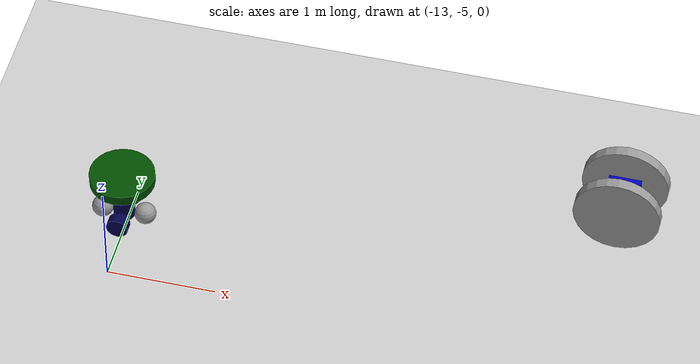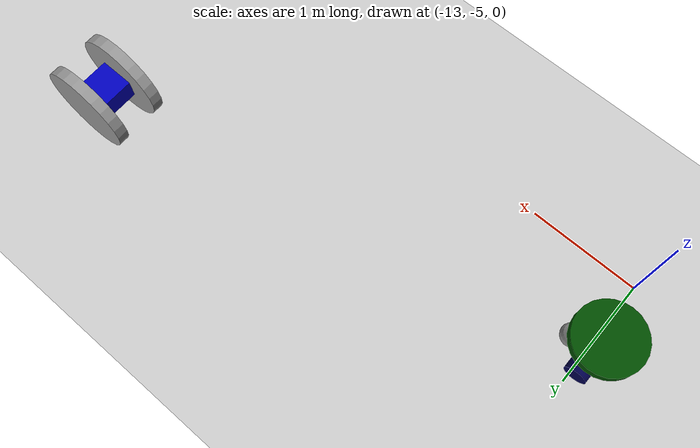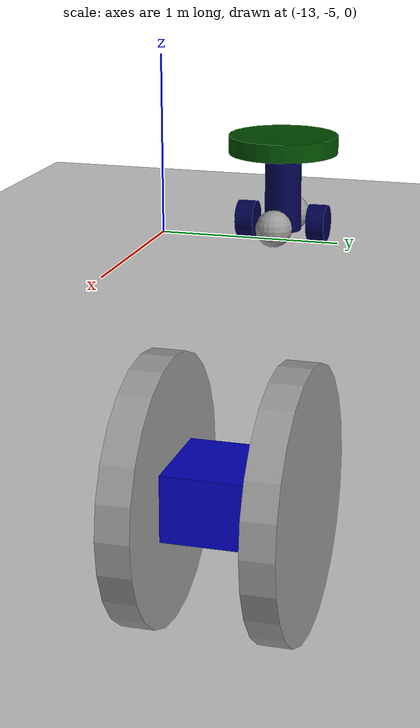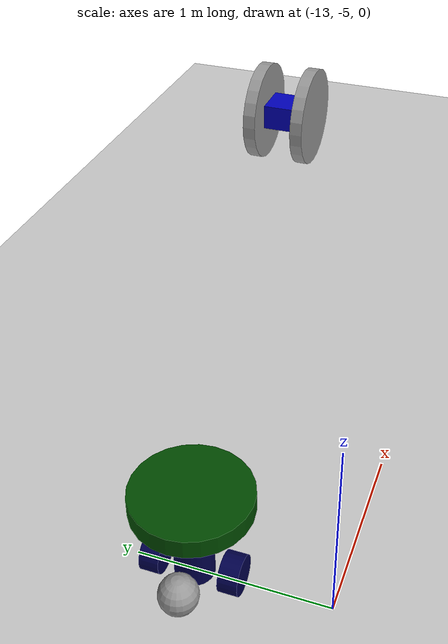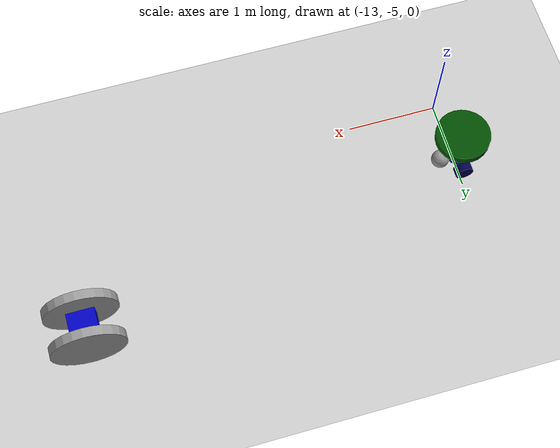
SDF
<sdf version="1.6">
 <world name="default">
  <model name="ground_plane">
   <static>1</static>
   <link name="link">
    <collision name="collision">
     <geometry><plane><normal>0 0 1</normal><size>100 100</size></plane></geometry>
     <surface>
      <contact><collide_bitmask>65535</collide_bitmask></contact>
      <friction><ode><mu>100</mu><mu2>50</mu2></ode></friction>
     </surface>
    </collision>
    <visual name="visual">
     <cast_shadows>0</cast_shadows>
     <geometry><plane><normal>0 0 1</normal><size>100 100</size></plane></geometry>
     <material>
      <script><uri>file://media/materials/scripts/gazebo.material</uri><name>Gazebo/Grey</name></script>
     </material>
    </visual>
   </link>
  </model>
  <model name="simplerobot">
   <link name="link_0">
    <inertial>
     <mass>1</mass>
     <inertia>
      <ixx>0.166667</ixx>
      <ixy>0</ixy>
      <ixz>0</ixz>
      <iyy>0.166667</iyy>
      <iyz>0</iyz>
      <izz>0.166667</izz>
     </inertia>
    </inertial>
    <visual name="visual">
     <geometry><box><size>0.3 0.3 0.2</size></box></geometry>
     <material>
      <lighting>1</lighting>
      <script><uri>file://media/materials/scripts/gazebo.material</uri><name>Gazebo/Grey</name></script>
      <shader type="pixel"><normal_map>__default__</normal_map></shader>
      <ambient>0 0 0.75 1</ambient>
      <diffuse>0 0 0.75 1</diffuse>
      <specular>0 0 0.75 1</specular>
      <emissive>0 0 0 1</emissive>
     </material>
    </visual>
    <collision name="collision">
     <geometry><box><size>0.3 0.3 0.2</size></box></geometry>
     <surface>
      <friction>
       <ode><mu>1</mu><mu2>1</mu2><fdir1>0 0 0</fdir1><slip1>0</slip1><slip2>0</slip2></ode>
       <torsional>
        <coefficient>1</coefficient>
        <patch_radius>0</patch_radius>
        <surface_radius>0</surface_radius>
        <use_patch_radius>1</use_patch_radius>
        <ode><slip>0</slip></ode>
       </torsional>
      </friction>
      <bounce><restitution_coefficient>0</restitution_coefficient><threshold>1e+06</threshold></bounce>
      <contact>
       <collide_without_contact>0</collide_without_contact>
       <collide_without_contact_bitmask>1</collide_without_contact_bitmask>
       <collide_bitmask>1</collide_bitmask>
       <ode>
        <soft_cfm>0</soft_cfm>
        <soft_erp>0.2</soft_erp>
        <kp>1e+13</kp>
        <kd>1</kd>
        <max_vel>0.01</max_vel>
        <min_depth>0</min_depth>
       </ode>
       <bullet>
        <split_impulse>1</split_impulse>
        <split_impulse_penetration_threshold>-0.01</split_impulse_penetration_threshold>
        <soft_cfm>0</soft_cfm>
        <soft_erp>0.2</soft_erp>
        <kp>1e+13</kp>
        <kd>1</kd>
       </bullet>
      </contact>
     </surface>
    </collision>
   </link>
   <link name="link_1">
    <pose>0 -0.200038 0 1.5707 -0 0</pose>
    <inertial>
     <mass>1</mass>
     <inertia><ixx>0.145833</ixx><ixy>0</ixy><ixz>0</ixz><iyy>0.145833</iyy><iyz>0</iyz><izz>0.125</izz></inertia>
    </inertial>
    <visual name="visual">
     <geometry><cylinder><radius>0.4</radius><length>0.1</length></cylinder></geometry>
     <material>
      <lighting>1</lighting>
      <script><uri>file://media/materials/scripts/gazebo.material</uri><name>Gazebo/Grey</name></script>
      <shader type="pixel"><normal_map>__default__</normal_map></shader>
      <ambient>0 0 0 1</ambient>
      <diffuse>0 0 0 1</diffuse>
      <specular>0 0 0 1</specular>
      <emissive>0 0 0 1</emissive>
     </material>
    </visual>
    <collision name="collision">
     <geometry><cylinder><radius>0.4</radius><length>0.1</length></cylinder></geometry>
     <surface>
      <friction>
       <ode><mu>1</mu><mu2>1</mu2><fdir1>0 0 0</fdir1><slip1>0</slip1><slip2>0</slip2></ode>
       <torsional>
        <coefficient>1</coefficient>
        <patch_radius>0</patch_radius>
        <surface_radius>0</surface_radius>
        <use_patch_radius>1</use_patch_radius>
        <ode><slip>0</slip></ode>
       </torsional>
      </friction>
      <bounce><restitution_coefficient>0</restitution_coefficient><threshold>1e+06</threshold></bounce>
      <contact>
       <collide_without_contact>0</collide_without_contact>
       <collide_without_contact_bitmask>1</collide_without_contact_bitmask>
       <collide_bitmask>1</collide_bitmask>
       <ode>
        <soft_cfm>0</soft_cfm>
        <soft_erp>0.2</soft_erp>
        <kp>1e+13</kp>
        <kd>1</kd>
        <max_vel>0.01</max_vel>
        <min_depth>0</min_depth>
       </ode>
       <bullet>
        <split_impulse>1</split_impulse>
        <split_impulse_penetration_threshold>-0.01</split_impulse_penetration_threshold>
        <soft_cfm>0</soft_cfm>
        <soft_erp>0.2</soft_erp>
        <kp>1e+13</kp>
        <kd>1</kd>
       </bullet>
      </contact>
     </surface>
    </collision>
   </link>
   <link name="link_1_clone">
    <pose>0 0.200039 0 1.5707 -0 0</pose>
    <inertial>
     <mass>1</mass>
     <inertia><ixx>0.145833</ixx><ixy>0</ixy><ixz>0</ixz><iyy>0.145833</iyy><iyz>0</iyz><izz>0.125</izz></inertia>
    </inertial>
    <visual name="visual">
     <geometry><cylinder><radius>0.4</radius><length>0.1</length></cylinder></geometry>
     <material>
      <lighting>1</lighting>
      <script><uri>file://media/materials/scripts/gazebo.material</uri><name>Gazebo/Grey</name></script>
      <shader type="pixel"><normal_map>__default__</normal_map></shader>
      <ambient>0 0 0 1</ambient>
      <diffuse>0 0 0 1</diffuse>
      <specular>0 0 0 1</specular>
      <emissive>0 0 0 1</emissive>
     </material>
    </visual>
    <collision name="collision">
     <geometry><cylinder><radius>0.4</radius><length>0.1</length></cylinder></geometry>
     <surface>
      <friction>
       <ode><mu>1</mu><mu2>1</mu2><fdir1>0 0 0</fdir1><slip1>0</slip1><slip2>0</slip2></ode>
       <torsional>
        <coefficient>1</coefficient>
        <patch_radius>0</patch_radius>
        <surface_radius>0</surface_radius>
        <use_patch_radius>1</use_patch_radius>
        <ode><slip>0</slip></ode>
       </torsional>
      </friction>
      <bounce><restitution_coefficient>0</restitution_coefficient><threshold>1e+06</threshold></bounce>
      <contact>
       <collide_without_contact>0</collide_without_contact>
       <collide_without_contact_bitmask>1</collide_without_contact_bitmask>
       <collide_bitmask>1</collide_bitmask>
       <ode>
        <soft_cfm>0</soft_cfm>
        <soft_erp>0.2</soft_erp>
        <kp>1e+13</kp>
        <kd>1</kd>
        <max_vel>0.01</max_vel>
        <min_depth>0</min_depth>
       </ode>
       <bullet>
        <split_impulse>1</split_impulse>
        <split_impulse_penetration_threshold>-0.01</split_impulse_penetration_threshold>
        <soft_cfm>0</soft_cfm>
        <soft_erp>0.2</soft_erp>
        <kp>1e+13</kp>
        <kd>1</kd>
       </bullet>
      </contact>
     </surface>
    </collision>
   </link>
   <joint name="link_0_JOINT_0" type="revolute">
    <parent>link_0</parent>
    <child>link_1</child>
    <axis>
     <xyz>0 0 1</xyz>
     <use_parent_model_frame>0</use_parent_model_frame>
     <limit>
      <lower>-1.79769e+308</lower>
      <upper>1.79769e+308</upper>
      <effort>-1</effort>
      <velocity>-1</velocity>
     </limit>
     <dynamics>
      <spring_reference>0</spring_reference>
      <spring_stiffness>0</spring_stiffness>
      <damping>0</damping>
     </dynamics>
    </axis>
    <physics>
     <ode><limit><cfm>0</cfm><erp>0.2</erp></limit><suspension><cfm>0</cfm><erp>0.2</erp></suspension></ode>
    </physics>
   </joint>
   <joint name="link_0_JOINT_1" type="revolute">
    <parent>link_0</parent>
    <child>link_1_clone</child>
    <axis>
     <xyz>0 0 1</xyz>
     <use_parent_model_frame>0</use_parent_model_frame>
     <limit>
      <lower>-1.79769e+308</lower>
      <upper>1.79769e+308</upper>
      <effort>-1</effort>
      <velocity>-1</velocity>
     </limit>
     <dynamics>
      <spring_reference>0</spring_reference>
      <spring_stiffness>0</spring_stiffness>
      <damping>0</damping>
     </dynamics>
    </axis>
    <physics>
     <ode><limit><cfm>0</cfm><erp>0.2</erp></limit><suspension><cfm>0</cfm><erp>0.2</erp></suspension></ode>
    </physics>
   </joint>
   <static>0</static>
   <pose>-8.63197 -3.36346 0.400005 -1e-06 0 0</pose>
  </model>
  <model name="simplerobot2">
   <link name="link_0">
    <pose>0 0 0.12 0 -0 0</pose>
    <inertial>
     <mass>1</mass>
     <inertia><ixx>0.145833</ixx><ixy>0</ixy><ixz>0</ixz><iyy>0.145833</iyy><iyz>0</iyz><izz>0.125</izz></inertia>
    </inertial>
    <visual name="visual">
     <geometry><cylinder><radius>0.1</radius><length>0.4</length></cylinder></geometry>
     <material>
      <lighting>1</lighting>
      <script><uri>file://media/materials/scripts/gazebo.material</uri><name>Gazebo/Grey</name></script>
      <shader type="pixel"><normal_map>__default__</normal_map></shader>
      <ambient>0 0 0.3 1</ambient>
      <diffuse>0 0 0.3 1</diffuse>
      <specular>0 0 0.3 1</specular>
      <emissive>0 0 0 1</emissive>
     </material>
    </visual>
    <collision name="collision">
     <geometry><cylinder><radius>0.1</radius><length>0.4</length></cylinder></geometry>
     <surface>
      <friction>
       <ode><mu>1</mu><mu2>1</mu2><fdir1>0 0 0</fdir1><slip1>0</slip1><slip2>0</slip2></ode>
       <torsional>
        <coefficient>1</coefficient>
        <patch_radius>0</patch_radius>
        <surface_radius>0</surface_radius>
        <use_patch_radius>1</use_patch_radius>
        <ode><slip>0</slip></ode>
       </torsional>
      </friction>
      <bounce><restitution_coefficient>0</restitution_coefficient><threshold>1e+06</threshold></bounce>
      <contact>
       <collide_without_contact>0</collide_without_contact>
       <collide_without_contact_bitmask>1</collide_without_contact_bitmask>
       <collide_bitmask>1</collide_bitmask>
       <ode>
        <soft_cfm>0</soft_cfm>
        <soft_erp>0.2</soft_erp>
        <kp>1e+13</kp>
        <kd>1</kd>
        <max_vel>0.01</max_vel>
        <min_depth>0</min_depth>
       </ode>
       <bullet>
        <split_impulse>1</split_impulse>
        <split_impulse_penetration_threshold>-0.01</split_impulse_penetration_threshold>
        <soft_cfm>0</soft_cfm>
        <soft_erp>0.2</soft_erp>
        <kp>1e+13</kp>
        <kd>1</kd>
       </bullet>
      </contact>
     </surface>
    </collision>
   </link>
   <link name="link_0_0">
    <pose>0 0 0.4 0 4e-06 0.000493</pose>
    <inertial>
     <mass>1</mass>
     <inertia><ixx>0.145833</ixx><ixy>0</ixy><ixz>0</ixz><iyy>0.145833</iyy><iyz>0</iyz><izz>0.125</izz></inertia>
    </inertial>
    <visual name="visual">
     <geometry><cylinder><radius>0.3</radius><length>0.1</length></cylinder></geometry>
     <material>
      <lighting>1</lighting>
      <script><uri>file://media/materials/scripts/gazebo.material</uri><name>Gazebo/Grey</name></script>
      <shader type="pixel"><normal_map>__default__</normal_map></shader>
      <ambient>0 0.3 0 1</ambient>
      <diffuse>0 0.3 0 1</diffuse>
      <specular>0 0.3 0 1</specular>
      <emissive>0 0 0 1</emissive>
     </material>
    </visual>
    <collision name="collision">
     <geometry><cylinder><radius>0.3</radius><length>0.1</length></cylinder></geometry>
     <surface>
      <friction>
       <ode><mu>1</mu><mu2>1</mu2><fdir1>0 0 0</fdir1><slip1>0</slip1><slip2>0</slip2></ode>
       <torsional>
        <coefficient>1</coefficient>
        <patch_radius>0</patch_radius>
        <surface_radius>0</surface_radius>
        <use_patch_radius>1</use_patch_radius>
        <ode><slip>0</slip></ode>
       </torsional>
      </friction>
      <bounce><restitution_coefficient>0</restitution_coefficient><threshold>1e+06</threshold></bounce>
      <contact>
       <collide_without_contact>0</collide_without_contact>
       <collide_without_contact_bitmask>1</collide_without_contact_bitmask>
       <collide_bitmask>1</collide_bitmask>
       <ode>
        <soft_cfm>0</soft_cfm>
        <soft_erp>0.2</soft_erp>
        <kp>1e+13</kp>
        <kd>1</kd>
        <max_vel>0.01</max_vel>
        <min_depth>0</min_depth>
       </ode>
       <bullet>
        <split_impulse>1</split_impulse>
        <split_impulse_penetration_threshold>-0.01</split_impulse_penetration_threshold>
        <soft_cfm>0</soft_cfm>
        <soft_erp>0.2</soft_erp>
        <kp>1e+13</kp>
        <kd>1</kd>
       </bullet>
      </contact>
     </surface>
    </collision>
   </link>
   <link name="link_1">
    <pose>0 -0.2 -0.03 1.5707 -0 0</pose>
    <inertial>
     <mass>1</mass>
     <inertia><ixx>0.145833</ixx><ixy>0</ixy><ixz>0</ixz><iyy>0.145833</iyy><iyz>0</iyz><izz>0.125</izz></inertia>
    </inertial>
    <visual name="visual">
     <geometry><cylinder><radius>0.1</radius><length>0.1</length></cylinder></geometry>
     <material>
      <lighting>1</lighting>
      <script><uri>file://media/materials/scripts/gazebo.material</uri><name>Gazebo/Grey</name></script>
      <shader type="pixel"><normal_map>__default__</normal_map></shader>
      <ambient>0 0 0.3 1</ambient>
      <diffuse>0 0 0 1</diffuse>
      <specular>0 0 0 1</specular>
      <emissive>0 0 0 1</emissive>
     </material>
    </visual>
    <collision name="collision">
     <geometry><cylinder><radius>0.1</radius><length>0.1</length></cylinder></geometry>
     <surface>
      <friction>
       <ode><mu>1</mu><mu2>1</mu2><fdir1>0 0 0</fdir1><slip1>0</slip1><slip2>0</slip2></ode>
       <torsional>
        <coefficient>1</coefficient>
        <patch_radius>0</patch_radius>
        <surface_radius>0</surface_radius>
        <use_patch_radius>1</use_patch_radius>
        <ode><slip>0</slip></ode>
       </torsional>
      </friction>
      <bounce><restitution_coefficient>0</restitution_coefficient><threshold>1e+06</threshold></bounce>
      <contact>
       <collide_without_contact>0</collide_without_contact>
       <collide_without_contact_bitmask>1</collide_without_contact_bitmask>
       <collide_bitmask>1</collide_bitmask>
       <ode>
        <soft_cfm>0</soft_cfm>
        <soft_erp>0.2</soft_erp>
        <kp>1e+13</kp>
        <kd>1</kd>
        <max_vel>0.01</max_vel>
        <min_depth>0</min_depth>
       </ode>
       <bullet>
        <split_impulse>1</split_impulse>
        <split_impulse_penetration_threshold>-0.01</split_impulse_penetration_threshold>
        <soft_cfm>0</soft_cfm>
        <soft_erp>0.2</soft_erp>
        <kp>1e+13</kp>
        <kd>1</kd>
       </bullet>
      </contact>
     </surface>
    </collision>
   </link>
   <link name="link_1_clone">
    <pose>0 0.2 -0.03 1.5707 -0 0</pose>
    <inertial>
     <mass>1</mass>
     <inertia><ixx>0.145833</ixx><ixy>0</ixy><ixz>0</ixz><iyy>0.145833</iyy><iyz>0</iyz><izz>0.125</izz></inertia>
    </inertial>
    <visual name="visual">
     <geometry><cylinder><radius>0.1</radius><length>0.1</length></cylinder></geometry>
     <material>
      <lighting>1</lighting>
      <script><uri>file://media/materials/scripts/gazebo.material</uri><name>Gazebo/Grey</name></script>
      <shader type="pixel"><normal_map>__default__</normal_map></shader>
      <ambient>0 0 0.3 1</ambient>
      <diffuse>0 0 0 1</diffuse>
      <specular>0 0 0 1</specular>
      <emissive>0 0 0 1</emissive>
     </material>
    </visual>
    <collision name="collision">
     <geometry><cylinder><radius>0.1</radius><length>0.1</length></cylinder></geometry>
     <surface>
      <friction>
       <ode><mu>1</mu><mu2>1</mu2><fdir1>0 0 0</fdir1><slip1>0</slip1><slip2>0</slip2></ode>
       <torsional>
        <coefficient>1</coefficient>
        <patch_radius>0</patch_radius>
        <surface_radius>0</surface_radius>
        <use_patch_radius>1</use_patch_radius>
        <ode><slip>0</slip></ode>
       </torsional>
      </friction>
      <bounce><restitution_coefficient>0</restitution_coefficient><threshold>1e+06</threshold></bounce>
      <contact>
       <collide_without_contact>0</collide_without_contact>
       <collide_without_contact_bitmask>1</collide_without_contact_bitmask>
       <collide_bitmask>1</collide_bitmask>
       <ode>
        <soft_cfm>0</soft_cfm>
        <soft_erp>0.2</soft_erp>
        <kp>1e+13</kp>
        <kd>1</kd>
        <max_vel>0.01</max_vel>
        <min_depth>0</min_depth>
       </ode>
       <bullet>
        <split_impulse>1</split_impulse>
        <split_impulse_penetration_threshold>-0.01</split_impulse_penetration_threshold>
        <soft_cfm>0</soft_cfm>
        <soft_erp>0.2</soft_erp>
        <kp>1e+13</kp>
        <kd>1</kd>
       </bullet>
      </contact>
     </surface>
    </collision>
   </link>
   <link name="link_2">
    <pose>0.2 0 -0.03 0 -0 0</pose>
    <inertial>
     <mass>1</mass>
     <inertia><ixx>0.1</ixx><ixy>0</ixy><ixz>0</ixz><iyy>0.1</iyy><iyz>0</iyz><izz>0.1</izz></inertia>
    </inertial>
    <visual name="visual">
     <geometry><sphere><radius>0.1</radius></sphere></geometry>
     <material>
      <lighting>1</lighting>
      <script><uri>file://media/materials/scripts/gazebo.material</uri><name>Gazebo/Grey</name></script>
      <shader type="pixel"><normal_map>__default__</normal_map></shader>
      <ambient>0.3 0.3 0.3 1</ambient>
      <diffuse>0.7 0.7 0.7 1</diffuse>
      <specular>0.01 0.01 0.01 1</specular>
      <emissive>0 0 0 1</emissive>
     </material>
    </visual>
    <collision name="collision">
     <geometry><sphere><radius>0.1</radius></sphere></geometry>
     <surface>
      <friction>
       <ode><mu>1</mu><mu2>1</mu2><fdir1>0 0 0</fdir1><slip1>0</slip1><slip2>0</slip2></ode>
       <torsional>
        <coefficient>1</coefficient>
        <patch_radius>0</patch_radius>
        <surface_radius>0</surface_radius>
        <use_patch_radius>1</use_patch_radius>
        <ode><slip>0</slip></ode>
       </torsional>
      </friction>
      <bounce><restitution_coefficient>0</restitution_coefficient><threshold>1e+06</threshold></bounce>
      <contact>
       <collide_without_contact>0</collide_without_contact>
       <collide_without_contact_bitmask>1</collide_without_contact_bitmask>
       <collide_bitmask>1</collide_bitmask>
       <ode>
        <soft_cfm>0</soft_cfm>
        <soft_erp>0.2</soft_erp>
        <kp>1e+13</kp>
        <kd>1</kd>
        <max_vel>0.01</max_vel>
        <min_depth>0</min_depth>
       </ode>
       <bullet>
        <split_impulse>1</split_impulse>
        <split_impulse_penetration_threshold>-0.01</split_impulse_penetration_threshold>
        <soft_cfm>0</soft_cfm>
        <soft_erp>0.2</soft_erp>
        <kp>1e+13</kp>
        <kd>1</kd>
       </bullet>
      </contact>
     </surface>
    </collision>
   </link>
   <link name="link_2_clone">
    <pose>-0.2 -0 -0.03 0 -0 0</pose>
    <inertial>
     <mass>1</mass>
     <inertia><ixx>0.1</ixx><ixy>0</ixy><ixz>0</ixz><iyy>0.1</iyy><iyz>0</iyz><izz>0.1</izz></inertia>
    </inertial>
    <visual name="visual">
     <geometry><sphere><radius>0.1</radius></sphere></geometry>
     <material>
      <lighting>1</lighting>
      <script><uri>file://media/materials/scripts/gazebo.material</uri><name>Gazebo/Grey</name></script>
      <shader type="pixel"><normal_map>__default__</normal_map></shader>
      <ambient>0.3 0.3 0.3 1</ambient>
      <diffuse>0.7 0.7 0.7 1</diffuse>
      <specular>0.01 0.01 0.01 1</specular>
      <emissive>0 0 0 1</emissive>
     </material>
    </visual>
    <collision name="collision">
     <geometry><sphere><radius>0.1</radius></sphere></geometry>
     <surface>
      <friction>
       <ode><mu>1</mu><mu2>1</mu2><fdir1>0 0 0</fdir1><slip1>0</slip1><slip2>0</slip2></ode>
       <torsional>
        <coefficient>1</coefficient>
        <patch_radius>0</patch_radius>
        <surface_radius>0</surface_radius>
        <use_patch_radius>1</use_patch_radius>
        <ode><slip>0</slip></ode>
       </torsional>
      </friction>
      <bounce><restitution_coefficient>0</restitution_coefficient><threshold>1e+06</threshold></bounce>
      <contact>
       <collide_without_contact>0</collide_without_contact>
       <collide_without_contact_bitmask>1</collide_without_contact_bitmask>
       <collide_bitmask>1</collide_bitmask>
       <ode>
        <soft_cfm>0</soft_cfm>
        <soft_erp>0.2</soft_erp>
        <kp>1e+13</kp>
        <kd>1</kd>
        <max_vel>0.01</max_vel>
        <min_depth>0</min_depth>
       </ode>
       <bullet>
        <split_impulse>1</split_impulse>
        <split_impulse_penetration_threshold>-0.01</split_impulse_penetration_threshold>
        <soft_cfm>0</soft_cfm>
        <soft_erp>0.2</soft_erp>
        <kp>1e+13</kp>
        <kd>1</kd>
       </bullet>
      </contact>
     </surface>
    </collision>
   </link>
   <joint name="link_0_0_JOINT_1" type="revolute">
    <parent>link_0_0</parent>
    <child>link_0</child>
    <axis>
     <xyz>0 0 1</xyz>
     <use_parent_model_frame>0</use_parent_model_frame>
     <limit>
      <lower>-1.79769e+308</lower>
      <upper>1.79769e+308</upper>
      <effort>-1</effort>
      <velocity>-1</velocity>
     </limit>
     <dynamics>
      <spring_reference>0</spring_reference>
      <spring_stiffness>0</spring_stiffness>
      <damping>0</damping>
     </dynamics>
    </axis>
    <physics>
     <ode><limit><cfm>0</cfm><erp>0.2</erp></limit><suspension><cfm>0</cfm><erp>0.2</erp></suspension></ode>
    </physics>
   </joint>
   <joint name="link_0_JOINT_0" type="revolute">
    <parent>link_0</parent>
    <child>link_1</child>
    <axis>
     <xyz>0 0 1</xyz>
     <use_parent_model_frame>0</use_parent_model_frame>
     <limit>
      <lower>-1.79769e+308</lower>
      <upper>1.79769e+308</upper>
      <effort>-1</effort>
      <velocity>-1</velocity>
     </limit>
     <dynamics>
      <spring_reference>0</spring_reference>
      <spring_stiffness>0</spring_stiffness>
      <damping>0</damping>
      <friction>0</friction>
     </dynamics>
    </axis>
    <physics>
     <ode><limit><cfm>0</cfm><erp>0.2</erp></limit><suspension><cfm>0</cfm><erp>0.2</erp></suspension></ode>
    </physics>
   </joint>
   <joint name="link_0_JOINT_3" type="revolute">
    <parent>link_0</parent>
    <child>link_1_clone</child>
    <axis>
     <xyz>0 0 1</xyz>
     <use_parent_model_frame>0</use_parent_model_frame>
     <limit>
      <lower>-1.79769e+308</lower>
      <upper>1.79769e+308</upper>
      <effort>-1</effort>
      <velocity>-1</velocity>
     </limit>
     <dynamics>
      <spring_reference>0</spring_reference>
      <spring_stiffness>0</spring_stiffness>
      <damping>0</damping>
      <friction>0</friction>
     </dynamics>
    </axis>
    <physics>
     <ode><limit><cfm>0</cfm><erp>0.2</erp></limit><suspension><cfm>0</cfm><erp>0.2</erp></suspension></ode>
    </physics>
   </joint>
   <joint name="link_0_JOINT_4" type="fixed">
    <parent>link_0</parent>
    <child>link_2_clone</child>
    <physics>
     <ode><limit><cfm>0</cfm><erp>0.2</erp></limit><suspension><cfm>0</cfm><erp>0.2</erp></suspension></ode>
    </physics>
   </joint>
   <joint name="link_0_JOINT_5" type="fixed">
    <parent>link_0</parent>
    <child>link_2</child>
    <physics>
     <ode><limit><cfm>0</cfm><erp>0.2</erp></limit><suspension><cfm>0</cfm><erp>0.2</erp></suspension></ode>
    </physics>
   </joint>
   <static>0</static>
   <pose>-13.0363 -4.31799 0.130005 2e-06 -1.8e-05 0.000534</pose>
  </model>
 </world>
</sdf>
